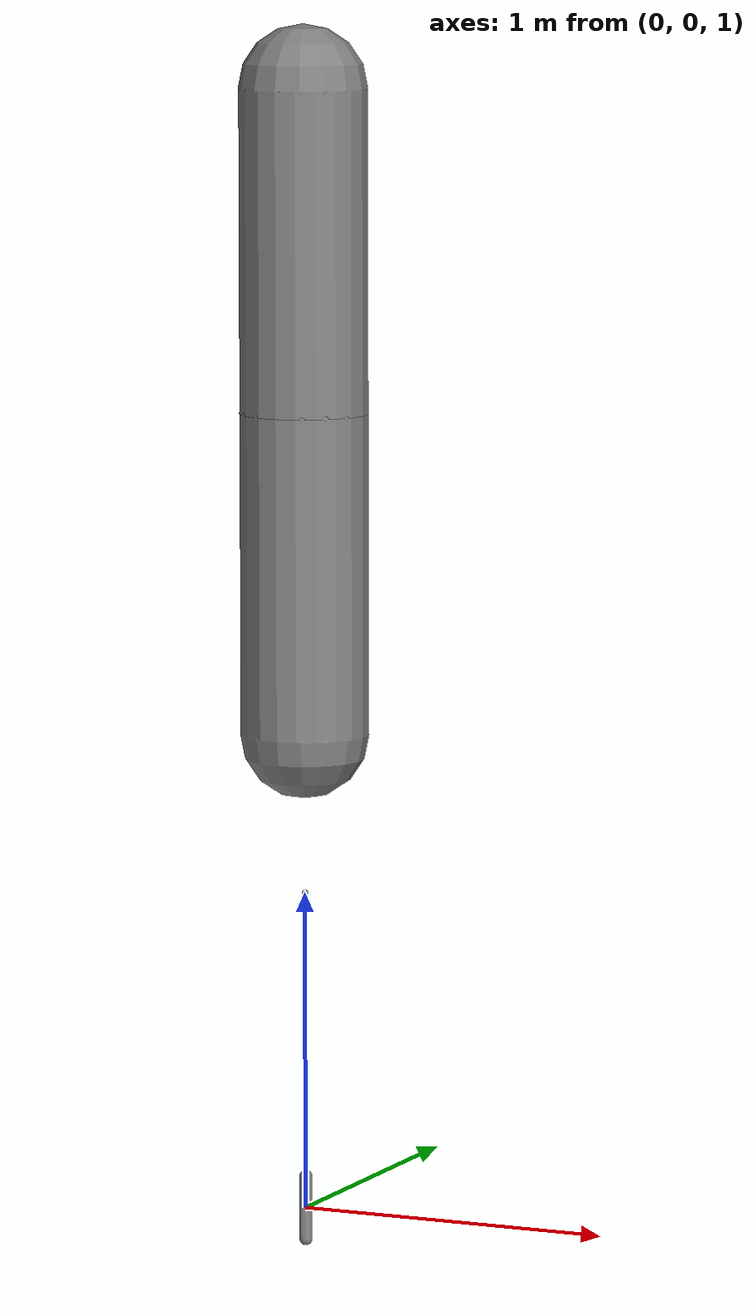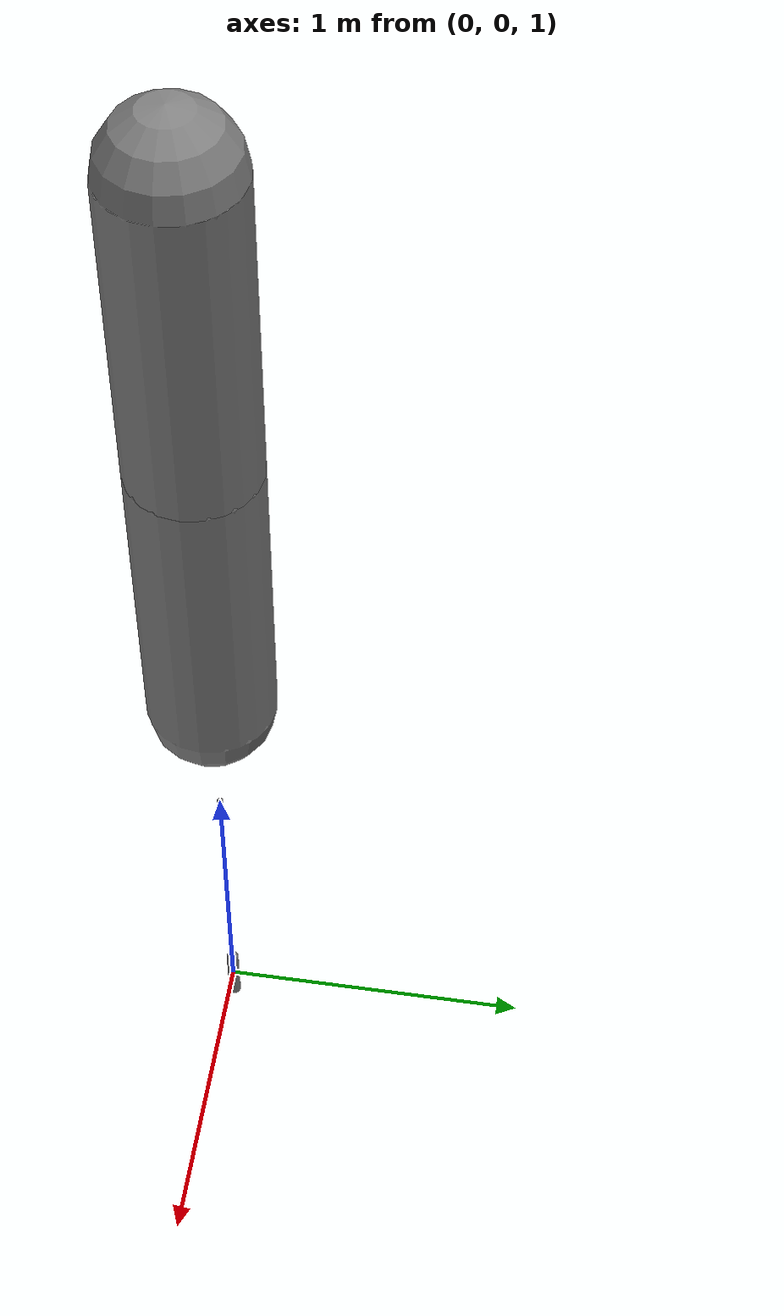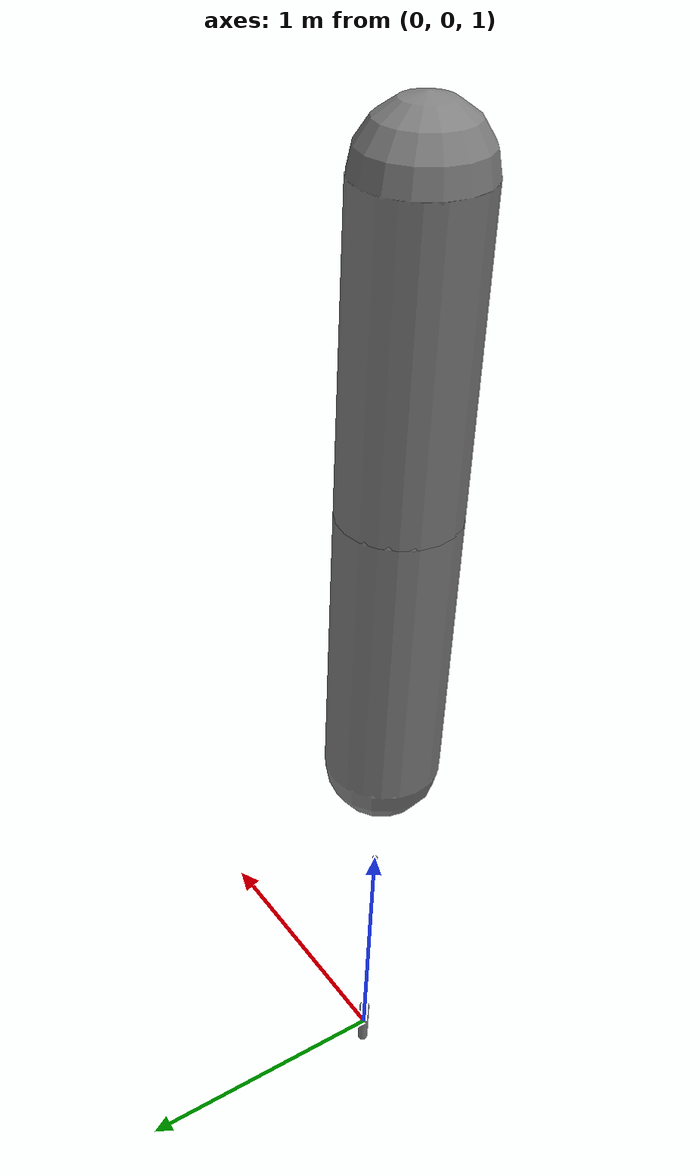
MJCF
<mujoco model="defaults_test">
  <compiler angle="degree"/>

  <default>
    <geom type="capsule" size="0.02 0.1"/>
    <joint type="hinge" damping="1.0" range="-90 90"/>
    <motor gear="50" ctrlrange="-1 1"/>

    <default class="heavy">
      <geom size="0.2 0.5"/>
      <joint damping="7.5"/>

      <default class="heavy_limited">
        <joint range="-30 30"/>
      </default>
    </default>

    <default class="light">
      <geom type="sphere" size="0.01"/>
    </default>
  </default>

  <worldbody>
    <!-- inherits the root class -->
    <body name="plain" pos="0 0 1">
      <inertial mass="1" diaginertia="0.1 0.1 0.1"/>
      <joint name="j_plain"/>
      <geom name="g_plain"/>
    </body>

    <!-- explicit class on each element -->
    <body name="explicit" pos="0 0 2">
      <inertial mass="2" diaginertia="0.2 0.2 0.2"/>
      <joint name="j_explicit" class="heavy"/>
      <geom name="g_explicit" class="light"/>
    </body>

    <!-- childclass applies to every descendant that names no class -->
    <body name="parent" pos="0 0 3" childclass="heavy">
      <inertial mass="3" diaginertia="0.3 0.3 0.3"/>
      <joint name="j_parent"/>
      <geom name="g_parent"/>

      <body name="child" pos="0 0 1">
        <inertial mass="4" diaginertia="0.4 0.4 0.4"/>
        <joint name="j_child" class="heavy_limited"/>
        <geom name="g_child"/>
      </body>
    </body>
  </worldbody>

  <actuator>
    <motor name="m_default" joint="j_plain"/>
    <motor name="m_override" joint="j_explicit" gear="200"/>
  </actuator>
</mujoco>
